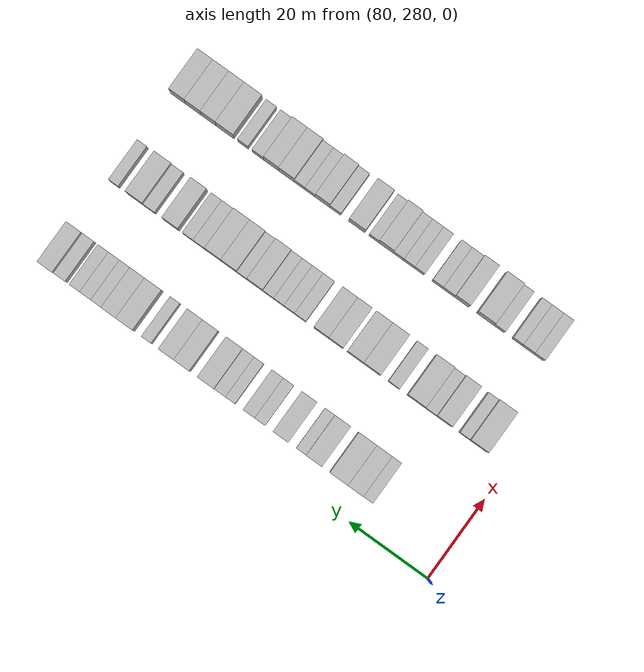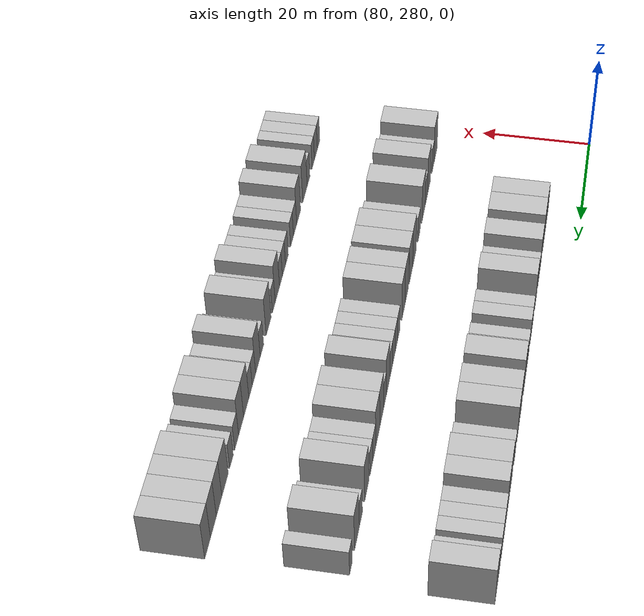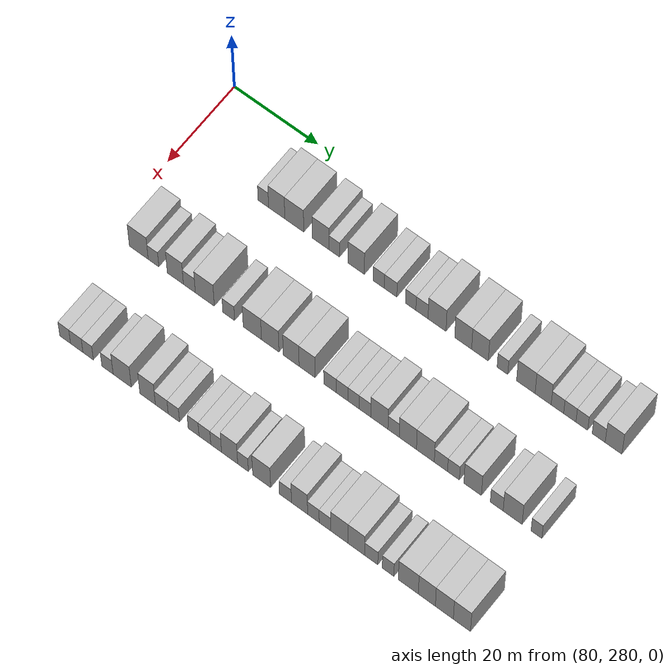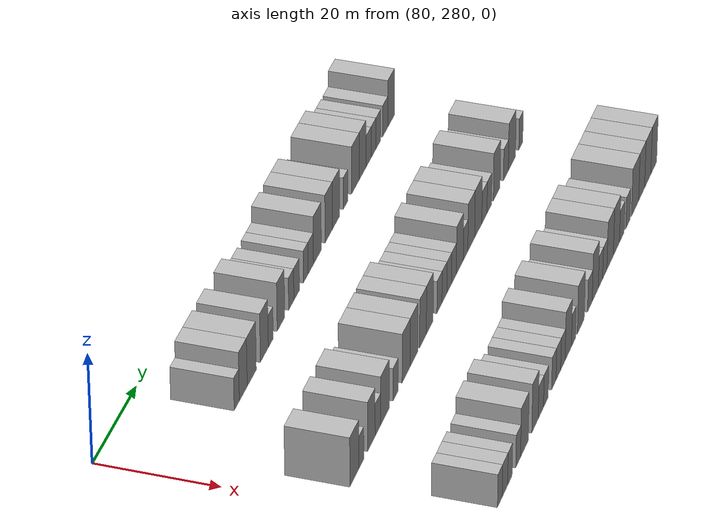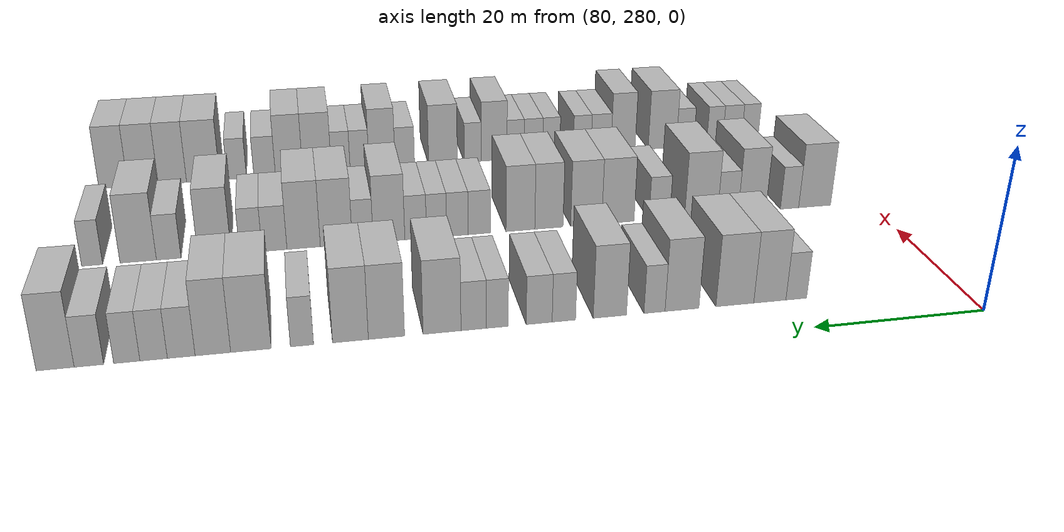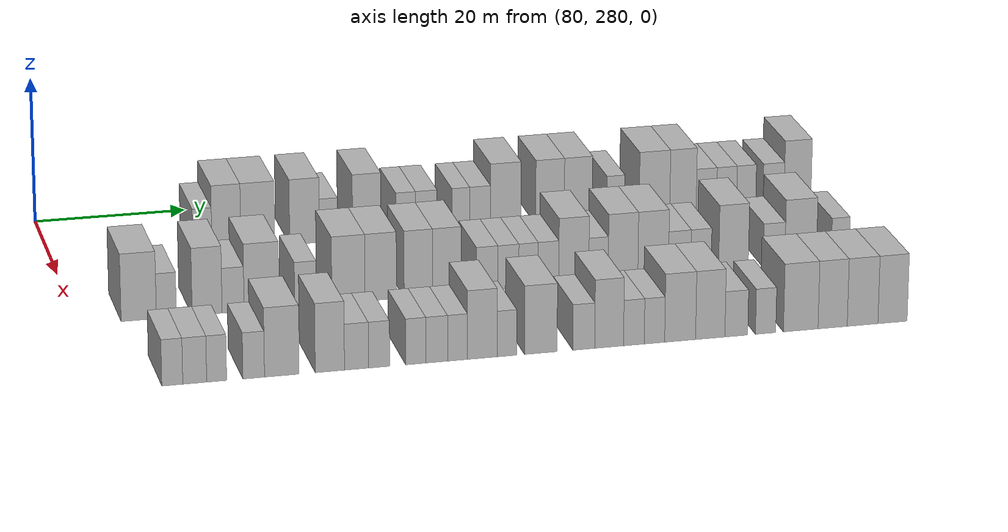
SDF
<sdf version="1.6">
 <world name="default">
  <model name="building_749">
   <static>1</static>
   <pose>91.0000 299.5628 0 0.000000 0.000000 0.000000</pose>
   <link name="link">
    <pose>0 0 3.00 0 0 0</pose>
    <collision name="collision"><geometry><box><size>10.0000 2.4907 6.0000</size></box></geometry></collision>
    <visual name="visual">
     <cast_shadows>0</cast_shadows>
     <geometry><box><size>10.0000 2.4907 6.0000</size></box></geometry>
     <material>
      <script>
       <uri>model://HANNAS_wall/materials/scripts</uri>
       <uri>model://HANNAS_wall/materials/textures</uri>
       <name>vrc/HANNAS_wall</name>
      </script>
     </material>
    </visual>
   </link>
  </model>
  <model name="building_750">
   <static>1</static>
   <pose>91.0000 302.7230 0 0.000000 0.000000 0.000000</pose>
   <link name="link">
    <pose>0 0 4.50 0 0 0</pose>
    <collision name="collision"><geometry><box><size>10.0000 3.8295 9.0000</size></box></geometry></collision>
    <visual name="visual">
     <cast_shadows>0</cast_shadows>
     <geometry><box><size>10.0000 3.8295 9.0000</size></box></geometry>
     <material>
      <script>
       <uri>model://HANNAS_wall/materials/scripts</uri>
       <uri>model://HANNAS_wall/materials/textures</uri>
       <name>vrc/HANNAS_wall</name>
      </script>
     </material>
    </visual>
   </link>
  </model>
  <model name="building_751">
   <static>1</static>
   <pose>91.0000 306.8746 0 0.000000 0.000000 0.000000</pose>
   <link name="link">
    <pose>0 0 4.50 0 0 0</pose>
    <collision name="collision"><geometry><box><size>10.0000 4.4738 9.0000</size></box></geometry></collision>
    <visual name="visual">
     <cast_shadows>0</cast_shadows>
     <geometry><box><size>10.0000 4.4738 9.0000</size></box></geometry>
     <material>
      <script>
       <uri>model://HANNAS_wall/materials/scripts</uri>
       <uri>model://HANNAS_wall/materials/textures</uri>
       <name>vrc/HANNAS_wall</name>
      </script>
     </material>
    </visual>
   </link>
  </model>
  <model name="building_752">
   <static>1</static>
   <pose>91.0000 313.0837 0 0.000000 0.000000 0.000000</pose>
   <link name="link">
    <pose>0 0 4.50 0 0 0</pose>
    <collision name="collision"><geometry><box><size>10.0000 3.9445 9.0000</size></box></geometry></collision>
    <visual name="visual">
     <cast_shadows>0</cast_shadows>
     <geometry><box><size>10.0000 3.9445 9.0000</size></box></geometry>
     <material>
      <script>
       <uri>model://HANNAS_wall/materials/scripts</uri>
       <uri>model://HANNAS_wall/materials/textures</uri>
       <name>vrc/HANNAS_wall</name>
      </script>
     </material>
    </visual>
   </link>
  </model>
  <model name="building_753">
   <static>1</static>
   <pose>91.0000 316.2738 0 0.000000 0.000000 0.000000</pose>
   <link name="link">
    <pose>0 0 3.00 0 0 0</pose>
    <collision name="collision"><geometry><box><size>10.0000 2.4356 6.0000</size></box></geometry></collision>
    <visual name="visual">
     <cast_shadows>0</cast_shadows>
     <geometry><box><size>10.0000 2.4356 6.0000</size></box></geometry>
     <material>
      <script>
       <uri>model://HANNAS_wall/materials/scripts</uri>
       <uri>model://HANNAS_wall/materials/textures</uri>
       <name>vrc/HANNAS_wall</name>
      </script>
     </material>
    </visual>
   </link>
  </model>
  <model name="building_754">
   <static>1</static>
   <pose>91.0000 321.3948 0 0.000000 0.000000 0.000000</pose>
   <link name="link">
    <pose>0 0 4.50 0 0 0</pose>
    <collision name="collision"><geometry><box><size>10.0000 3.8064 9.0000</size></box></geometry></collision>
    <visual name="visual">
     <cast_shadows>0</cast_shadows>
     <geometry><box><size>10.0000 3.8064 9.0000</size></box></geometry>
     <material>
      <script>
       <uri>model://HANNAS_wall/materials/scripts</uri>
       <uri>model://HANNAS_wall/materials/textures</uri>
       <name>vrc/HANNAS_wall</name>
      </script>
     </material>
    </visual>
   </link>
  </model>
  <model name="building_755">
   <static>1</static>
   <pose>91.0000 326.6159 0 0.000000 0.000000 0.000000</pose>
   <link name="link">
    <pose>0 0 3.00 0 0 0</pose>
    <collision name="collision"><geometry><box><size>10.0000 2.6358 6.0000</size></box></geometry></collision>
    <visual name="visual">
     <cast_shadows>0</cast_shadows>
     <geometry><box><size>10.0000 2.6358 6.0000</size></box></geometry>
     <material>
      <script>
       <uri>model://HANNAS_wall/materials/scripts</uri>
       <uri>model://HANNAS_wall/materials/textures</uri>
       <name>vrc/HANNAS_wall</name>
      </script>
     </material>
    </visual>
   </link>
  </model>
  <model name="building_756">
   <static>1</static>
   <pose>91.0000 329.3864 0 0.000000 0.000000 0.000000</pose>
   <link name="link">
    <pose>0 0 3.00 0 0 0</pose>
    <collision name="collision"><geometry><box><size>10.0000 2.9052 6.0000</size></box></geometry></collision>
    <visual name="visual">
     <cast_shadows>0</cast_shadows>
     <geometry><box><size>10.0000 2.9052 6.0000</size></box></geometry>
     <material>
      <script>
       <uri>model://HANNAS_wall/materials/scripts</uri>
       <uri>model://HANNAS_wall/materials/textures</uri>
       <name>vrc/HANNAS_wall</name>
      </script>
     </material>
    </visual>
   </link>
  </model>
  <model name="building_757">
   <static>1</static>
   <pose>91.0000 334.0398 0 0.000000 0.000000 0.000000</pose>
   <link name="link">
    <pose>0 0 3.00 0 0 0</pose>
    <collision name="collision"><geometry><box><size>10.0000 2.4017 6.0000</size></box></geometry></collision>
    <visual name="visual">
     <cast_shadows>0</cast_shadows>
     <geometry><box><size>10.0000 2.4017 6.0000</size></box></geometry>
     <material>
      <script>
       <uri>model://HANNAS_wall/materials/scripts</uri>
       <uri>model://HANNAS_wall/materials/textures</uri>
       <name>vrc/HANNAS_wall</name>
      </script>
     </material>
    </visual>
   </link>
  </model>
  <model name="building_758">
   <static>1</static>
   <pose>91.0000 336.6426 0 0.000000 0.000000 0.000000</pose>
   <link name="link">
    <pose>0 0 3.00 0 0 0</pose>
    <collision name="collision"><geometry><box><size>10.0000 2.8038 6.0000</size></box></geometry></collision>
    <visual name="visual">
     <cast_shadows>0</cast_shadows>
     <geometry><box><size>10.0000 2.8038 6.0000</size></box></geometry>
     <material>
      <script>
       <uri>model://HANNAS_wall/materials/scripts</uri>
       <uri>model://HANNAS_wall/materials/textures</uri>
       <name>vrc/HANNAS_wall</name>
      </script>
     </material>
    </visual>
   </link>
  </model>
  <model name="building_759">
   <static>1</static>
   <pose>91.0000 340.1137 0 0.000000 0.000000 0.000000</pose>
   <link name="link">
    <pose>0 0 4.50 0 0 0</pose>
    <collision name="collision"><geometry><box><size>10.0000 4.1384 9.0000</size></box></geometry></collision>
    <visual name="visual">
     <cast_shadows>0</cast_shadows>
     <geometry><box><size>10.0000 4.1384 9.0000</size></box></geometry>
     <material>
      <script>
       <uri>model://HANNAS_wall/materials/scripts</uri>
       <uri>model://HANNAS_wall/materials/textures</uri>
       <name>vrc/HANNAS_wall</name>
      </script>
     </material>
    </visual>
   </link>
  </model>
  <model name="building_760">
   <static>1</static>
   <pose>91.0000 346.1278 0 0.000000 0.000000 0.000000</pose>
   <link name="link">
    <pose>0 0 4.50 0 0 0</pose>
    <collision name="collision"><geometry><box><size>10.0000 3.8899 9.0000</size></box></geometry></collision>
    <visual name="visual">
     <cast_shadows>0</cast_shadows>
     <geometry><box><size>10.0000 3.8899 9.0000</size></box></geometry>
     <material>
      <script>
       <uri>model://HANNAS_wall/materials/scripts</uri>
       <uri>model://HANNAS_wall/materials/textures</uri>
       <name>vrc/HANNAS_wall</name>
      </script>
     </material>
    </visual>
   </link>
  </model>
  <model name="building_761">
   <static>1</static>
   <pose>91.0000 349.9790 0 0.000000 0.000000 0.000000</pose>
   <link name="link">
    <pose>0 0 4.50 0 0 0</pose>
    <collision name="collision"><geometry><box><size>10.0000 3.8125 9.0000</size></box></geometry></collision>
    <visual name="visual">
     <cast_shadows>0</cast_shadows>
     <geometry><box><size>10.0000 3.8125 9.0000</size></box></geometry>
     <material>
      <script>
       <uri>model://HANNAS_wall/materials/scripts</uri>
       <uri>model://HANNAS_wall/materials/textures</uri>
       <name>vrc/HANNAS_wall</name>
      </script>
     </material>
    </visual>
   </link>
  </model>
  <model name="building_762">
   <static>1</static>
   <pose>91.0000 355.1048 0 0.000000 0.000000 0.000000</pose>
   <link name="link">
    <pose>0 0 3.00 0 0 0</pose>
    <collision name="collision"><geometry><box><size>10.0000 2.4392 6.0000</size></box></geometry></collision>
    <visual name="visual">
     <cast_shadows>0</cast_shadows>
     <geometry><box><size>10.0000 2.4392 6.0000</size></box></geometry>
     <material>
      <script>
       <uri>model://HANNAS_wall/materials/scripts</uri>
       <uri>model://HANNAS_wall/materials/textures</uri>
       <name>vrc/HANNAS_wall</name>
      </script>
     </material>
    </visual>
   </link>
  </model>
  <model name="building_763">
   <static>1</static>
   <pose>91.0000 360.4281 0 0.000000 0.000000 0.000000</pose>
   <link name="link">
    <pose>0 0 4.50 0 0 0</pose>
    <collision name="collision"><geometry><box><size>10.0000 4.2074 9.0000</size></box></geometry></collision>
    <visual name="visual">
     <cast_shadows>0</cast_shadows>
     <geometry><box><size>10.0000 4.2074 9.0000</size></box></geometry>
     <material>
      <script>
       <uri>model://HANNAS_wall/materials/scripts</uri>
       <uri>model://HANNAS_wall/materials/textures</uri>
       <name>vrc/HANNAS_wall</name>
      </script>
     </material>
    </visual>
   </link>
  </model>
  <model name="building_764">
   <static>1</static>
   <pose>91.0000 364.3573 0 0.000000 0.000000 0.000000</pose>
   <link name="link">
    <pose>0 0 4.50 0 0 0</pose>
    <collision name="collision"><geometry><box><size>10.0000 3.6508 9.0000</size></box></geometry></collision>
    <visual name="visual">
     <cast_shadows>0</cast_shadows>
     <geometry><box><size>10.0000 3.6508 9.0000</size></box></geometry>
     <material>
      <script>
       <uri>model://HANNAS_wall/materials/scripts</uri>
       <uri>model://HANNAS_wall/materials/textures</uri>
       <name>vrc/HANNAS_wall</name>
      </script>
     </material>
    </visual>
   </link>
  </model>
  <model name="building_765">
   <static>1</static>
   <pose>91.0000 367.5956 0 0.000000 0.000000 0.000000</pose>
   <link name="link">
    <pose>0 0 3.00 0 0 0</pose>
    <collision name="collision"><geometry><box><size>10.0000 2.8259 6.0000</size></box></geometry></collision>
    <visual name="visual">
     <cast_shadows>0</cast_shadows>
     <geometry><box><size>10.0000 2.8259 6.0000</size></box></geometry>
     <material>
      <script>
       <uri>model://HANNAS_wall/materials/scripts</uri>
       <uri>model://HANNAS_wall/materials/textures</uri>
       <name>vrc/HANNAS_wall</name>
      </script>
     </material>
    </visual>
   </link>
  </model>
  <model name="building_766">
   <static>1</static>
   <pose>91.0000 370.3951 0 0.000000 0.000000 0.000000</pose>
   <link name="link">
    <pose>0 0 3.00 0 0 0</pose>
    <collision name="collision"><geometry><box><size>10.0000 2.7730 6.0000</size></box></geometry></collision>
    <visual name="visual">
     <cast_shadows>0</cast_shadows>
     <geometry><box><size>10.0000 2.7730 6.0000</size></box></geometry>
     <material>
      <script>
       <uri>model://HANNAS_wall/materials/scripts</uri>
       <uri>model://HANNAS_wall/materials/textures</uri>
       <name>vrc/HANNAS_wall</name>
      </script>
     </material>
    </visual>
   </link>
  </model>
  <model name="building_767">
   <static>1</static>
   <pose>91.0000 373.1025 0 0.000000 0.000000 0.000000</pose>
   <link name="link">
    <pose>0 0 3.00 0 0 0</pose>
    <collision name="collision"><geometry><box><size>10.0000 2.6418 6.0000</size></box></geometry></collision>
    <visual name="visual">
     <cast_shadows>0</cast_shadows>
     <geometry><box><size>10.0000 2.6418 6.0000</size></box></geometry>
     <material>
      <script>
       <uri>model://HANNAS_wall/materials/scripts</uri>
       <uri>model://HANNAS_wall/materials/textures</uri>
       <name>vrc/HANNAS_wall</name>
      </script>
     </material>
    </visual>
   </link>
  </model>
  <model name="building_768">
   <static>1</static>
   <pose>91.0000 376.8869 0 0.000000 0.000000 0.000000</pose>
   <link name="link">
    <pose>0 0 3.00 0 0 0</pose>
    <collision name="collision"><geometry><box><size>10.0000 2.9271 6.0000</size></box></geometry></collision>
    <visual name="visual">
     <cast_shadows>0</cast_shadows>
     <geometry><box><size>10.0000 2.9271 6.0000</size></box></geometry>
     <material>
      <script>
       <uri>model://HANNAS_wall/materials/scripts</uri>
       <uri>model://HANNAS_wall/materials/textures</uri>
       <name>vrc/HANNAS_wall</name>
      </script>
     </material>
    </visual>
   </link>
  </model>
  <model name="building_769">
   <static>1</static>
   <pose>91.0000 380.2285 0 0.000000 0.000000 0.000000</pose>
   <link name="link">
    <pose>0 0 4.50 0 0 0</pose>
    <collision name="collision"><geometry><box><size>10.0000 3.7560 9.0000</size></box></geometry></collision>
    <visual name="visual">
     <cast_shadows>0</cast_shadows>
     <geometry><box><size>10.0000 3.7560 9.0000</size></box></geometry>
     <material>
      <script>
       <uri>model://HANNAS_wall/materials/scripts</uri>
       <uri>model://HANNAS_wall/materials/textures</uri>
       <name>vrc/HANNAS_wall</name>
      </script>
     </material>
    </visual>
   </link>
  </model>
  <model name="building_935">
   <static>1</static>
   <pose>113.0000 287.5940 0 0.000000 0.000000 0.000000</pose>
   <link name="link">
    <pose>0 0 4.50 0 0 0</pose>
    <collision name="collision"><geometry><box><size>10.0000 4.4628 9.0000</size></box></geometry></collision>
    <visual name="visual">
     <cast_shadows>0</cast_shadows>
     <geometry><box><size>10.0000 4.4628 9.0000</size></box></geometry>
     <material>
      <script>
       <uri>model://HANNAS_wall/materials/scripts</uri>
       <uri>model://HANNAS_wall/materials/textures</uri>
       <name>vrc/HANNAS_wall</name>
      </script>
     </material>
    </visual>
   </link>
  </model>
  <model name="building_936">
   <static>1</static>
   <pose>113.0000 291.0936 0 0.000000 0.000000 0.000000</pose>
   <link name="link">
    <pose>0 0 3.00 0 0 0</pose>
    <collision name="collision"><geometry><box><size>10.0000 2.5364 6.0000</size></box></geometry></collision>
    <visual name="visual">
     <cast_shadows>0</cast_shadows>
     <geometry><box><size>10.0000 2.5364 6.0000</size></box></geometry>
     <material>
      <script>
       <uri>model://HANNAS_wall/materials/scripts</uri>
       <uri>model://HANNAS_wall/materials/textures</uri>
       <name>vrc/HANNAS_wall</name>
      </script>
     </material>
    </visual>
   </link>
  </model>
  <model name="building_937">
   <static>1</static>
   <pose>113.0000 296.2647 0 0.000000 0.000000 0.000000</pose>
   <link name="link">
    <pose>0 0 4.50 0 0 0</pose>
    <collision name="collision"><geometry><box><size>10.0000 3.8058 9.0000</size></box></geometry></collision>
    <visual name="visual">
     <cast_shadows>0</cast_shadows>
     <geometry><box><size>10.0000 3.8058 9.0000</size></box></geometry>
     <material>
      <script>
       <uri>model://HANNAS_wall/materials/scripts</uri>
       <uri>model://HANNAS_wall/materials/textures</uri>
       <name>vrc/HANNAS_wall</name>
      </script>
     </material>
    </visual>
   </link>
  </model>
  <model name="building_938">
   <static>1</static>
   <pose>113.0000 299.5726 0 0.000000 0.000000 0.000000</pose>
   <link name="link">
    <pose>0 0 3.00 0 0 0</pose>
    <collision name="collision"><geometry><box><size>10.0000 2.8099 6.0000</size></box></geometry></collision>
    <visual name="visual">
     <cast_shadows>0</cast_shadows>
     <geometry><box><size>10.0000 2.8099 6.0000</size></box></geometry>
     <material>
      <script>
       <uri>model://HANNAS_wall/materials/scripts</uri>
       <uri>model://HANNAS_wall/materials/textures</uri>
       <name>vrc/HANNAS_wall</name>
      </script>
     </material>
    </visual>
   </link>
  </model>
  <model name="building_939">
   <static>1</static>
   <pose>113.0000 303.2124 0 0.000000 0.000000 0.000000</pose>
   <link name="link">
    <pose>0 0 4.50 0 0 0</pose>
    <collision name="collision"><geometry><box><size>10.0000 4.4697 9.0000</size></box></geometry></collision>
    <visual name="visual">
     <cast_shadows>0</cast_shadows>
     <geometry><box><size>10.0000 4.4697 9.0000</size></box></geometry>
     <material>
      <script>
       <uri>model://HANNAS_wall/materials/scripts</uri>
       <uri>model://HANNAS_wall/materials/textures</uri>
       <name>vrc/HANNAS_wall</name>
      </script>
     </material>
    </visual>
   </link>
  </model>
  <model name="building_940">
   <static>1</static>
   <pose>113.0000 308.8360 0 0.000000 0.000000 0.000000</pose>
   <link name="link">
    <pose>0 0 3.00 0 0 0</pose>
    <collision name="collision"><geometry><box><size>10.0000 2.7776 6.0000</size></box></geometry></collision>
    <visual name="visual">
     <cast_shadows>0</cast_shadows>
     <geometry><box><size>10.0000 2.7776 6.0000</size></box></geometry>
     <material>
      <script>
       <uri>model://HANNAS_wall/materials/scripts</uri>
       <uri>model://HANNAS_wall/materials/textures</uri>
       <name>vrc/HANNAS_wall</name>
      </script>
     </material>
    </visual>
   </link>
  </model>
  <model name="building_941">
   <static>1</static>
   <pose>113.0000 314.3600 0 0.000000 0.000000 0.000000</pose>
   <link name="link">
    <pose>0 0 4.50 0 0 0</pose>
    <collision name="collision"><geometry><box><size>10.0000 4.2703 9.0000</size></box></geometry></collision>
    <visual name="visual">
     <cast_shadows>0</cast_shadows>
     <geometry><box><size>10.0000 4.2703 9.0000</size></box></geometry>
     <material>
      <script>
       <uri>model://HANNAS_wall/materials/scripts</uri>
       <uri>model://HANNAS_wall/materials/textures</uri>
       <name>vrc/HANNAS_wall</name>
      </script>
     </material>
    </visual>
   </link>
  </model>
  <model name="building_942">
   <static>1</static>
   <pose>113.0000 318.5326 0 0.000000 0.000000 0.000000</pose>
   <link name="link">
    <pose>0 0 4.50 0 0 0</pose>
    <collision name="collision"><geometry><box><size>10.0000 4.0749 9.0000</size></box></geometry></collision>
    <visual name="visual">
     <cast_shadows>0</cast_shadows>
     <geometry><box><size>10.0000 4.0749 9.0000</size></box></geometry>
     <material>
      <script>
       <uri>model://HANNAS_wall/materials/scripts</uri>
       <uri>model://HANNAS_wall/materials/textures</uri>
       <name>vrc/HANNAS_wall</name>
      </script>
     </material>
    </visual>
   </link>
  </model>
  <model name="building_943">
   <static>1</static>
   <pose>113.0000 323.4015 0 0.000000 0.000000 0.000000</pose>
   <link name="link">
    <pose>0 0 4.50 0 0 0</pose>
    <collision name="collision"><geometry><box><size>10.0000 3.6629 9.0000</size></box></geometry></collision>
    <visual name="visual">
     <cast_shadows>0</cast_shadows>
     <geometry><box><size>10.0000 3.6629 9.0000</size></box></geometry>
     <material>
      <script>
       <uri>model://HANNAS_wall/materials/scripts</uri>
       <uri>model://HANNAS_wall/materials/textures</uri>
       <name>vrc/HANNAS_wall</name>
      </script>
     </material>
    </visual>
   </link>
  </model>
  <model name="building_944">
   <static>1</static>
   <pose>113.0000 327.0918 0 0.000000 0.000000 0.000000</pose>
   <link name="link">
    <pose>0 0 4.50 0 0 0</pose>
    <collision name="collision"><geometry><box><size>10.0000 3.7177 9.0000</size></box></geometry></collision>
    <visual name="visual">
     <cast_shadows>0</cast_shadows>
     <geometry><box><size>10.0000 3.7177 9.0000</size></box></geometry>
     <material>
      <script>
       <uri>model://HANNAS_wall/materials/scripts</uri>
       <uri>model://HANNAS_wall/materials/textures</uri>
       <name>vrc/HANNAS_wall</name>
      </script>
     </material>
    </visual>
   </link>
  </model>
  <model name="building_945">
   <static>1</static>
   <pose>113.0000 332.3673 0 0.000000 0.000000 0.000000</pose>
   <link name="link">
    <pose>0 0 3.00 0 0 0</pose>
    <collision name="collision"><geometry><box><size>10.0000 2.8334 6.0000</size></box></geometry></collision>
    <visual name="visual">
     <cast_shadows>0</cast_shadows>
     <geometry><box><size>10.0000 2.8334 6.0000</size></box></geometry>
     <material>
      <script>
       <uri>model://HANNAS_wall/materials/scripts</uri>
       <uri>model://HANNAS_wall/materials/textures</uri>
       <name>vrc/HANNAS_wall</name>
      </script>
     </material>
    </visual>
   </link>
  </model>
  <model name="building_946">
   <static>1</static>
   <pose>113.0000 335.1411 0 0.000000 0.000000 0.000000</pose>
   <link name="link">
    <pose>0 0 3.00 0 0 0</pose>
    <collision name="collision"><geometry><box><size>10.0000 2.7142 6.0000</size></box></geometry></collision>
    <visual name="visual">
     <cast_shadows>0</cast_shadows>
     <geometry><box><size>10.0000 2.7142 6.0000</size></box></geometry>
     <material>
      <script>
       <uri>model://HANNAS_wall/materials/scripts</uri>
       <uri>model://HANNAS_wall/materials/textures</uri>
       <name>vrc/HANNAS_wall</name>
      </script>
     </material>
    </visual>
   </link>
  </model>
  <model name="building_947">
   <static>1</static>
   <pose>113.0000 337.7682 0 0.000000 0.000000 0.000000</pose>
   <link name="link">
    <pose>0 0 3.00 0 0 0</pose>
    <collision name="collision"><geometry><box><size>10.0000 2.5400 6.0000</size></box></geometry></collision>
    <visual name="visual">
     <cast_shadows>0</cast_shadows>
     <geometry><box><size>10.0000 2.5400 6.0000</size></box></geometry>
     <material>
      <script>
       <uri>model://HANNAS_wall/materials/scripts</uri>
       <uri>model://HANNAS_wall/materials/textures</uri>
       <name>vrc/HANNAS_wall</name>
      </script>
     </material>
    </visual>
   </link>
  </model>
  <model name="building_948">
   <static>1</static>
   <pose>113.0000 340.3959 0 0.000000 0.000000 0.000000</pose>
   <link name="link">
    <pose>0 0 3.00 0 0 0</pose>
    <collision name="collision"><geometry><box><size>10.0000 2.7153 6.0000</size></box></geometry></collision>
    <visual name="visual">
     <cast_shadows>0</cast_shadows>
     <geometry><box><size>10.0000 2.7153 6.0000</size></box></geometry>
     <material>
      <script>
       <uri>model://HANNAS_wall/materials/scripts</uri>
       <uri>model://HANNAS_wall/materials/textures</uri>
       <name>vrc/HANNAS_wall</name>
      </script>
     </material>
    </visual>
   </link>
  </model>
  <model name="building_949">
   <static>1</static>
   <pose>113.0000 343.7255 0 0.000000 0.000000 0.000000</pose>
   <link name="link">
    <pose>0 0 4.50 0 0 0</pose>
    <collision name="collision"><geometry><box><size>10.0000 3.9439 9.0000</size></box></geometry></collision>
    <visual name="visual">
     <cast_shadows>0</cast_shadows>
     <geometry><box><size>10.0000 3.9439 9.0000</size></box></geometry>
     <material>
      <script>
       <uri>model://HANNAS_wall/materials/scripts</uri>
       <uri>model://HANNAS_wall/materials/textures</uri>
       <name>vrc/HANNAS_wall</name>
      </script>
     </material>
    </visual>
   </link>
  </model>
  <model name="building_950">
   <static>1</static>
   <pose>113.0000 346.9807 0 0.000000 0.000000 0.000000</pose>
   <link name="link">
    <pose>0 0 3.00 0 0 0</pose>
    <collision name="collision"><geometry><box><size>10.0000 2.5665 6.0000</size></box></geometry></collision>
    <visual name="visual">
     <cast_shadows>0</cast_shadows>
     <geometry><box><size>10.0000 2.5665 6.0000</size></box></geometry>
     <material>
      <script>
       <uri>model://HANNAS_wall/materials/scripts</uri>
       <uri>model://HANNAS_wall/materials/textures</uri>
       <name>vrc/HANNAS_wall</name>
      </script>
     </material>
    </visual>
   </link>
  </model>
  <model name="building_951">
   <static>1</static>
   <pose>113.0000 350.2272 0 0.000000 0.000000 0.000000</pose>
   <link name="link">
    <pose>0 0 4.50 0 0 0</pose>
    <collision name="collision"><geometry><box><size>10.0000 3.9265 9.0000</size></box></geometry></collision>
    <visual name="visual">
     <cast_shadows>0</cast_shadows>
     <geometry><box><size>10.0000 3.9265 9.0000</size></box></geometry>
     <material>
      <script>
       <uri>model://HANNAS_wall/materials/scripts</uri>
       <uri>model://HANNAS_wall/materials/textures</uri>
       <name>vrc/HANNAS_wall</name>
      </script>
     </material>
    </visual>
   </link>
  </model>
  <model name="building_952">
   <static>1</static>
   <pose>113.0000 354.2211 0 0.000000 0.000000 0.000000</pose>
   <link name="link">
    <pose>0 0 4.50 0 0 0</pose>
    <collision name="collision"><geometry><box><size>10.0000 4.0613 9.0000</size></box></geometry></collision>
    <visual name="visual">
     <cast_shadows>0</cast_shadows>
     <geometry><box><size>10.0000 4.0613 9.0000</size></box></geometry>
     <material>
      <script>
       <uri>model://HANNAS_wall/materials/scripts</uri>
       <uri>model://HANNAS_wall/materials/textures</uri>
       <name>vrc/HANNAS_wall</name>
      </script>
     </material>
    </visual>
   </link>
  </model>
  <model name="building_953">
   <static>1</static>
   <pose>113.0000 357.7511 0 0.000000 0.000000 0.000000</pose>
   <link name="link">
    <pose>0 0 3.00 0 0 0</pose>
    <collision name="collision"><geometry><box><size>10.0000 2.9987 6.0000</size></box></geometry></collision>
    <visual name="visual">
     <cast_shadows>0</cast_shadows>
     <geometry><box><size>10.0000 2.9987 6.0000</size></box></geometry>
     <material>
      <script>
       <uri>model://HANNAS_wall/materials/scripts</uri>
       <uri>model://HANNAS_wall/materials/textures</uri>
       <name>vrc/HANNAS_wall</name>
      </script>
     </material>
    </visual>
   </link>
  </model>
  <model name="building_954">
   <static>1</static>
   <pose>113.0000 360.5954 0 0.000000 0.000000 0.000000</pose>
   <link name="link">
    <pose>0 0 3.00 0 0 0</pose>
    <collision name="collision"><geometry><box><size>10.0000 2.6900 6.0000</size></box></geometry></collision>
    <visual name="visual">
     <cast_shadows>0</cast_shadows>
     <geometry><box><size>10.0000 2.6900 6.0000</size></box></geometry>
     <material>
      <script>
       <uri>model://HANNAS_wall/materials/scripts</uri>
       <uri>model://HANNAS_wall/materials/textures</uri>
       <name>vrc/HANNAS_wall</name>
      </script>
     </material>
    </visual>
   </link>
  </model>
  <model name="building_955">
   <static>1</static>
   <pose>113.0000 364.9216 0 0.000000 0.000000 0.000000</pose>
   <link name="link">
    <pose>0 0 4.50 0 0 0</pose>
    <collision name="collision"><geometry><box><size>10.0000 3.9623 9.0000</size></box></geometry></collision>
    <visual name="visual">
     <cast_shadows>0</cast_shadows>
     <geometry><box><size>10.0000 3.9623 9.0000</size></box></geometry>
     <material>
      <script>
       <uri>model://HANNAS_wall/materials/scripts</uri>
       <uri>model://HANNAS_wall/materials/textures</uri>
       <name>vrc/HANNAS_wall</name>
      </script>
     </material>
    </visual>
   </link>
  </model>
  <model name="building_956">
   <static>1</static>
   <pose>113.0000 370.3501 0 0.000000 0.000000 0.000000</pose>
   <link name="link">
    <pose>0 0 3.00 0 0 0</pose>
    <collision name="collision"><geometry><box><size>10.0000 2.8948 6.0000</size></box></geometry></collision>
    <visual name="visual">
     <cast_shadows>0</cast_shadows>
     <geometry><box><size>10.0000 2.8948 6.0000</size></box></geometry>
     <material>
      <script>
       <uri>model://HANNAS_wall/materials/scripts</uri>
       <uri>model://HANNAS_wall/materials/textures</uri>
       <name>vrc/HANNAS_wall</name>
      </script>
     </material>
    </visual>
   </link>
  </model>
  <model name="building_957">
   <static>1</static>
   <pose>113.0000 373.9211 0 0.000000 0.000000 0.000000</pose>
   <link name="link">
    <pose>0 0 4.50 0 0 0</pose>
    <collision name="collision"><geometry><box><size>10.0000 4.2472 9.0000</size></box></geometry></collision>
    <visual name="visual">
     <cast_shadows>0</cast_shadows>
     <geometry><box><size>10.0000 4.2472 9.0000</size></box></geometry>
     <material>
      <script>
       <uri>model://HANNAS_wall/materials/scripts</uri>
       <uri>model://HANNAS_wall/materials/textures</uri>
       <name>vrc/HANNAS_wall</name>
      </script>
     </material>
    </visual>
   </link>
  </model>
  <model name="building_958">
   <static>1</static>
   <pose>113.0000 379.2583 0 0.000000 0.000000 0.000000</pose>
   <link name="link">
    <pose>0 0 3.00 0 0 0</pose>
    <collision name="collision"><geometry><box><size>10.0000 2.4272 6.0000</size></box></geometry></collision>
    <visual name="visual">
     <cast_shadows>0</cast_shadows>
     <geometry><box><size>10.0000 2.4272 6.0000</size></box></geometry>
     <material>
      <script>
       <uri>model://HANNAS_wall/materials/scripts</uri>
       <uri>model://HANNAS_wall/materials/textures</uri>
       <name>vrc/HANNAS_wall</name>
      </script>
     </material>
    </visual>
   </link>
  </model>
  <model name="building_1121">
   <static>1</static>
   <pose>135.0000 288.0864 0 0.000000 0.000000 0.000000</pose>
   <link name="link">
    <pose>0 0 3.00 0 0 0</pose>
    <collision name="collision"><geometry><box><size>10.0000 2.5559 6.0000</size></box></geometry></collision>
    <visual name="visual">
     <cast_shadows>0</cast_shadows>
     <geometry><box><size>10.0000 2.5559 6.0000</size></box></geometry>
     <material>
      <script>
       <uri>model://HANNAS_wall/materials/scripts</uri>
       <uri>model://HANNAS_wall/materials/textures</uri>
       <name>vrc/HANNAS_wall</name>
      </script>
     </material>
    </visual>
   </link>
  </model>
  <model name="building_1122">
   <static>1</static>
   <pose>135.0000 290.8292 0 0.000000 0.000000 0.000000</pose>
   <link name="link">
    <pose>0 0 3.00 0 0 0</pose>
    <collision name="collision"><geometry><box><size>10.0000 2.9298 6.0000</size></box></geometry></collision>
    <visual name="visual">
     <cast_shadows>0</cast_shadows>
     <geometry><box><size>10.0000 2.9298 6.0000</size></box></geometry>
     <material>
      <script>
       <uri>model://HANNAS_wall/materials/scripts</uri>
       <uri>model://HANNAS_wall/materials/textures</uri>
       <name>vrc/HANNAS_wall</name>
      </script>
     </material>
    </visual>
   </link>
  </model>
  <model name="building_1123">
   <static>1</static>
   <pose>135.0000 293.5216 0 0.000000 0.000000 0.000000</pose>
   <link name="link">
    <pose>0 0 3.00 0 0 0</pose>
    <collision name="collision"><geometry><box><size>10.0000 2.4551 6.0000</size></box></geometry></collision>
    <visual name="visual">
     <cast_shadows>0</cast_shadows>
     <geometry><box><size>10.0000 2.4551 6.0000</size></box></geometry>
     <material>
      <script>
       <uri>model://HANNAS_wall/materials/scripts</uri>
       <uri>model://HANNAS_wall/materials/textures</uri>
       <name>vrc/HANNAS_wall</name>
      </script>
     </material>
    </visual>
   </link>
  </model>
  <model name="building_1124">
   <static>1</static>
   <pose>135.0000 298.0754 0 0.000000 0.000000 0.000000</pose>
   <link name="link">
    <pose>0 0 3.00 0 0 0</pose>
    <collision name="collision"><geometry><box><size>10.0000 2.6524 6.0000</size></box></geometry></collision>
    <visual name="visual">
     <cast_shadows>0</cast_shadows>
     <geometry><box><size>10.0000 2.6524 6.0000</size></box></geometry>
     <material>
      <script>
       <uri>model://HANNAS_wall/materials/scripts</uri>
       <uri>model://HANNAS_wall/materials/textures</uri>
       <name>vrc/HANNAS_wall</name>
      </script>
     </material>
    </visual>
   </link>
  </model>
  <model name="building_1125">
   <static>1</static>
   <pose>135.0000 301.5348 0 0.000000 0.000000 0.000000</pose>
   <link name="link">
    <pose>0 0 4.50 0 0 0</pose>
    <collision name="collision"><geometry><box><size>10.0000 4.2665 9.0000</size></box></geometry></collision>
    <visual name="visual">
     <cast_shadows>0</cast_shadows>
     <geometry><box><size>10.0000 4.2665 9.0000</size></box></geometry>
     <material>
      <script>
       <uri>model://HANNAS_wall/materials/scripts</uri>
       <uri>model://HANNAS_wall/materials/textures</uri>
       <name>vrc/HANNAS_wall</name>
      </script>
     </material>
    </visual>
   </link>
  </model>
  <model name="building_1126">
   <static>1</static>
   <pose>135.0000 307.4825 0 0.000000 0.000000 0.000000</pose>
   <link name="link">
    <pose>0 0 4.50 0 0 0</pose>
    <collision name="collision"><geometry><box><size>10.0000 3.6290 9.0000</size></box></geometry></collision>
    <visual name="visual">
     <cast_shadows>0</cast_shadows>
     <geometry><box><size>10.0000 3.6290 9.0000</size></box></geometry>
     <material>
      <script>
       <uri>model://HANNAS_wall/materials/scripts</uri>
       <uri>model://HANNAS_wall/materials/textures</uri>
       <name>vrc/HANNAS_wall</name>
      </script>
     </material>
    </visual>
   </link>
  </model>
  <model name="building_1127">
   <static>1</static>
   <pose>135.0000 310.7880 0 0.000000 0.000000 0.000000</pose>
   <link name="link">
    <pose>0 0 3.00 0 0 0</pose>
    <collision name="collision"><geometry><box><size>10.0000 2.9819 6.0000</size></box></geometry></collision>
    <visual name="visual">
     <cast_shadows>0</cast_shadows>
     <geometry><box><size>10.0000 2.9819 6.0000</size></box></geometry>
     <material>
      <script>
       <uri>model://HANNAS_wall/materials/scripts</uri>
       <uri>model://HANNAS_wall/materials/textures</uri>
       <name>vrc/HANNAS_wall</name>
      </script>
     </material>
    </visual>
   </link>
  </model>
  <model name="building_1128">
   <static>1</static>
   <pose>135.0000 313.5994 0 0.000000 0.000000 0.000000</pose>
   <link name="link">
    <pose>0 0 3.00 0 0 0</pose>
    <collision name="collision"><geometry><box><size>10.0000 2.6410 6.0000</size></box></geometry></collision>
    <visual name="visual">
     <cast_shadows>0</cast_shadows>
     <geometry><box><size>10.0000 2.6410 6.0000</size></box></geometry>
     <material>
      <script>
       <uri>model://HANNAS_wall/materials/scripts</uri>
       <uri>model://HANNAS_wall/materials/textures</uri>
       <name>vrc/HANNAS_wall</name>
      </script>
     </material>
    </visual>
   </link>
  </model>
  <model name="building_1129">
   <static>1</static>
   <pose>135.0000 318.1809 0 0.000000 0.000000 0.000000</pose>
   <link name="link">
    <pose>0 0 3.00 0 0 0</pose>
    <collision name="collision"><geometry><box><size>10.0000 2.5218 6.0000</size></box></geometry></collision>
    <visual name="visual">
     <cast_shadows>0</cast_shadows>
     <geometry><box><size>10.0000 2.5218 6.0000</size></box></geometry>
     <material>
      <script>
       <uri>model://HANNAS_wall/materials/scripts</uri>
       <uri>model://HANNAS_wall/materials/textures</uri>
       <name>vrc/HANNAS_wall</name>
      </script>
     </material>
    </visual>
   </link>
  </model>
  <model name="building_1130">
   <static>1</static>
   <pose>135.0000 320.8021 0 0.000000 0.000000 0.000000</pose>
   <link name="link">
    <pose>0 0 3.00 0 0 0</pose>
    <collision name="collision"><geometry><box><size>10.0000 2.7206 6.0000</size></box></geometry></collision>
    <visual name="visual">
     <cast_shadows>0</cast_shadows>
     <geometry><box><size>10.0000 2.7206 6.0000</size></box></geometry>
     <material>
      <script>
       <uri>model://HANNAS_wall/materials/scripts</uri>
       <uri>model://HANNAS_wall/materials/textures</uri>
       <name>vrc/HANNAS_wall</name>
      </script>
     </material>
    </visual>
   </link>
  </model>
  <model name="building_1131">
   <static>1</static>
   <pose>135.0000 323.4128 0 0.000000 0.000000 0.000000</pose>
   <link name="link">
    <pose>0 0 3.00 0 0 0</pose>
    <collision name="collision"><geometry><box><size>10.0000 2.5008 6.0000</size></box></geometry></collision>
    <visual name="visual">
     <cast_shadows>0</cast_shadows>
     <geometry><box><size>10.0000 2.5008 6.0000</size></box></geometry>
     <material>
      <script>
       <uri>model://HANNAS_wall/materials/scripts</uri>
       <uri>model://HANNAS_wall/materials/textures</uri>
       <name>vrc/HANNAS_wall</name>
      </script>
     </material>
    </visual>
   </link>
  </model>
  <model name="building_1132">
   <static>1</static>
   <pose>135.0000 326.5219 0 0.000000 0.000000 0.000000</pose>
   <link name="link">
    <pose>0 0 4.50 0 0 0</pose>
    <collision name="collision"><geometry><box><size>10.0000 3.7172 9.0000</size></box></geometry></collision>
    <visual name="visual">
     <cast_shadows>0</cast_shadows>
     <geometry><box><size>10.0000 3.7172 9.0000</size></box></geometry>
     <material>
      <script>
       <uri>model://HANNAS_wall/materials/scripts</uri>
       <uri>model://HANNAS_wall/materials/textures</uri>
       <name>vrc/HANNAS_wall</name>
      </script>
     </material>
    </visual>
   </link>
  </model>
  <model name="building_1133">
   <static>1</static>
   <pose>135.0000 329.6123 0 0.000000 0.000000 0.000000</pose>
   <link name="link">
    <pose>0 0 3.00 0 0 0</pose>
    <collision name="collision"><geometry><box><size>10.0000 2.4637 6.0000</size></box></geometry></collision>
    <visual name="visual">
     <cast_shadows>0</cast_shadows>
     <geometry><box><size>10.0000 2.4637 6.0000</size></box></geometry>
     <material>
      <script>
       <uri>model://HANNAS_wall/materials/scripts</uri>
       <uri>model://HANNAS_wall/materials/textures</uri>
       <name>vrc/HANNAS_wall</name>
      </script>
     </material>
    </visual>
   </link>
  </model>
  <model name="building_1134">
   <static>1</static>
   <pose>135.0000 333.9034 0 0.000000 0.000000 0.000000</pose>
   <link name="link">
    <pose>0 0 4.50 0 0 0</pose>
    <collision name="collision"><geometry><box><size>10.0000 4.1186 9.0000</size></box></geometry></collision>
    <visual name="visual">
     <cast_shadows>0</cast_shadows>
     <geometry><box><size>10.0000 4.1186 9.0000</size></box></geometry>
     <material>
      <script>
       <uri>model://HANNAS_wall/materials/scripts</uri>
       <uri>model://HANNAS_wall/materials/textures</uri>
       <name>vrc/HANNAS_wall</name>
      </script>
     </material>
    </visual>
   </link>
  </model>
  <model name="building_1135">
   <static>1</static>
   <pose>135.0000 339.3487 0 0.000000 0.000000 0.000000</pose>
   <link name="link">
    <pose>0 0 3.00 0 0 0</pose>
    <collision name="collision"><geometry><box><size>10.0000 2.7720 6.0000</size></box></geometry></collision>
    <visual name="visual">
     <cast_shadows>0</cast_shadows>
     <geometry><box><size>10.0000 2.7720 6.0000</size></box></geometry>
     <material>
      <script>
       <uri>model://HANNAS_wall/materials/scripts</uri>
       <uri>model://HANNAS_wall/materials/textures</uri>
       <name>vrc/HANNAS_wall</name>
      </script>
     </material>
    </visual>
   </link>
  </model>
  <model name="building_1136">
   <static>1</static>
   <pose>135.0000 342.5724 0 0.000000 0.000000 0.000000</pose>
   <link name="link">
    <pose>0 0 4.50 0 0 0</pose>
    <collision name="collision"><geometry><box><size>10.0000 3.6755 9.0000</size></box></geometry></collision>
    <visual name="visual">
     <cast_shadows>0</cast_shadows>
     <geometry><box><size>10.0000 3.6755 9.0000</size></box></geometry>
     <material>
      <script>
       <uri>model://HANNAS_wall/materials/scripts</uri>
       <uri>model://HANNAS_wall/materials/textures</uri>
       <name>vrc/HANNAS_wall</name>
      </script>
     </material>
    </visual>
   </link>
  </model>
  <model name="building_1137">
   <static>1</static>
   <pose>135.0000 345.7316 0 0.000000 0.000000 0.000000</pose>
   <link name="link">
    <pose>0 0 3.00 0 0 0</pose>
    <collision name="collision"><geometry><box><size>10.0000 2.6429 6.0000</size></box></geometry></collision>
    <visual name="visual">
     <cast_shadows>0</cast_shadows>
     <geometry><box><size>10.0000 2.6429 6.0000</size></box></geometry>
     <material>
      <script>
       <uri>model://HANNAS_wall/materials/scripts</uri>
       <uri>model://HANNAS_wall/materials/textures</uri>
       <name>vrc/HANNAS_wall</name>
      </script>
     </material>
    </visual>
   </link>
  </model>
  <model name="building_1138">
   <static>1</static>
   <pose>135.0000 348.3604 0 0.000000 0.000000 0.000000</pose>
   <link name="link">
    <pose>0 0 3.00 0 0 0</pose>
    <collision name="collision"><geometry><box><size>10.0000 2.6147 6.0000</size></box></geometry></collision>
    <visual name="visual">
     <cast_shadows>0</cast_shadows>
     <geometry><box><size>10.0000 2.6147 6.0000</size></box></geometry>
     <material>
      <script>
       <uri>model://HANNAS_wall/materials/scripts</uri>
       <uri>model://HANNAS_wall/materials/textures</uri>
       <name>vrc/HANNAS_wall</name>
      </script>
     </material>
    </visual>
   </link>
  </model>
  <model name="building_1139">
   <static>1</static>
   <pose>135.0000 351.6498 0 0.000000 0.000000 0.000000</pose>
   <link name="link">
    <pose>0 0 4.50 0 0 0</pose>
    <collision name="collision"><geometry><box><size>10.0000 3.9641 9.0000</size></box></geometry></collision>
    <visual name="visual">
     <cast_shadows>0</cast_shadows>
     <geometry><box><size>10.0000 3.9641 9.0000</size></box></geometry>
     <material>
      <script>
       <uri>model://HANNAS_wall/materials/scripts</uri>
       <uri>model://HANNAS_wall/materials/textures</uri>
       <name>vrc/HANNAS_wall</name>
      </script>
     </material>
    </visual>
   </link>
  </model>
  <model name="building_1140">
   <static>1</static>
   <pose>135.0000 355.5151 0 0.000000 0.000000 0.000000</pose>
   <link name="link">
    <pose>0 0 4.50 0 0 0</pose>
    <collision name="collision"><geometry><box><size>10.0000 3.7664 9.0000</size></box></geometry></collision>
    <visual name="visual">
     <cast_shadows>0</cast_shadows>
     <geometry><box><size>10.0000 3.7664 9.0000</size></box></geometry>
     <material>
      <script>
       <uri>model://HANNAS_wall/materials/scripts</uri>
       <uri>model://HANNAS_wall/materials/textures</uri>
       <name>vrc/HANNAS_wall</name>
      </script>
     </material>
    </visual>
   </link>
  </model>
  <model name="building_1141">
   <static>1</static>
   <pose>135.0000 358.8692 0 0.000000 0.000000 0.000000</pose>
   <link name="link">
    <pose>0 0 3.00 0 0 0</pose>
    <collision name="collision"><geometry><box><size>10.0000 2.9418 6.0000</size></box></geometry></collision>
    <visual name="visual">
     <cast_shadows>0</cast_shadows>
     <geometry><box><size>10.0000 2.9418 6.0000</size></box></geometry>
     <material>
      <script>
       <uri>model://HANNAS_wall/materials/scripts</uri>
       <uri>model://HANNAS_wall/materials/textures</uri>
       <name>vrc/HANNAS_wall</name>
      </script>
     </material>
    </visual>
   </link>
  </model>
  <model name="building_1142">
   <static>1</static>
   <pose>135.0000 362.6504 0 0.000000 0.000000 0.000000</pose>
   <link name="link">
    <pose>0 0 3.00 0 0 0</pose>
    <collision name="collision"><geometry><box><size>10.0000 2.6206 6.0000</size></box></geometry></collision>
    <visual name="visual">
     <cast_shadows>0</cast_shadows>
     <geometry><box><size>10.0000 2.6206 6.0000</size></box></geometry>
     <material>
      <script>
       <uri>model://HANNAS_wall/materials/scripts</uri>
       <uri>model://HANNAS_wall/materials/textures</uri>
       <name>vrc/HANNAS_wall</name>
      </script>
     </material>
    </visual>
   </link>
  </model>
  <model name="building_1143">
   <static>1</static>
   <pose>135.0000 367.2051 0 0.000000 0.000000 0.000000</pose>
   <link name="link">
    <pose>0 0 4.50 0 0 0</pose>
    <collision name="collision"><geometry><box><size>10.0000 4.4887 9.0000</size></box></geometry></collision>
    <visual name="visual">
     <cast_shadows>0</cast_shadows>
     <geometry><box><size>10.0000 4.4887 9.0000</size></box></geometry>
     <material>
      <script>
       <uri>model://HANNAS_wall/materials/scripts</uri>
       <uri>model://HANNAS_wall/materials/textures</uri>
       <name>vrc/HANNAS_wall</name>
      </script>
     </material>
    </visual>
   </link>
  </model>
  <model name="building_1144">
   <static>1</static>
   <pose>135.0000 371.3486 0 0.000000 0.000000 0.000000</pose>
   <link name="link">
    <pose>0 0 4.50 0 0 0</pose>
    <collision name="collision"><geometry><box><size>10.0000 3.7983 9.0000</size></box></geometry></collision>
    <visual name="visual">
     <cast_shadows>0</cast_shadows>
     <geometry><box><size>10.0000 3.7983 9.0000</size></box></geometry>
     <material>
      <script>
       <uri>model://HANNAS_wall/materials/scripts</uri>
       <uri>model://HANNAS_wall/materials/textures</uri>
       <name>vrc/HANNAS_wall</name>
      </script>
     </material>
    </visual>
   </link>
  </model>
  <model name="building_1145">
   <static>1</static>
   <pose>135.0000 375.2525 0 0.000000 0.000000 0.000000</pose>
   <link name="link">
    <pose>0 0 4.50 0 0 0</pose>
    <collision name="collision"><geometry><box><size>10.0000 4.0095 9.0000</size></box></geometry></collision>
    <visual name="visual">
     <cast_shadows>0</cast_shadows>
     <geometry><box><size>10.0000 4.0095 9.0000</size></box></geometry>
     <material>
      <script>
       <uri>model://HANNAS_wall/materials/scripts</uri>
       <uri>model://HANNAS_wall/materials/textures</uri>
       <name>vrc/HANNAS_wall</name>
      </script>
     </material>
    </visual>
   </link>
  </model>
  <model name="building_1146">
   <static>1</static>
   <pose>135.0000 379.1661 0 0.000000 0.000000 0.000000</pose>
   <link name="link">
    <pose>0 0 4.50 0 0 0</pose>
    <collision name="collision"><geometry><box><size>10.0000 3.8176 9.0000</size></box></geometry></collision>
    <visual name="visual">
     <cast_shadows>0</cast_shadows>
     <geometry><box><size>10.0000 3.8176 9.0000</size></box></geometry>
     <material>
      <script>
       <uri>model://HANNAS_wall/materials/scripts</uri>
       <uri>model://HANNAS_wall/materials/textures</uri>
       <name>vrc/HANNAS_wall</name>
      </script>
     </material>
    </visual>
   </link>
  </model>
 </world>
</sdf>
